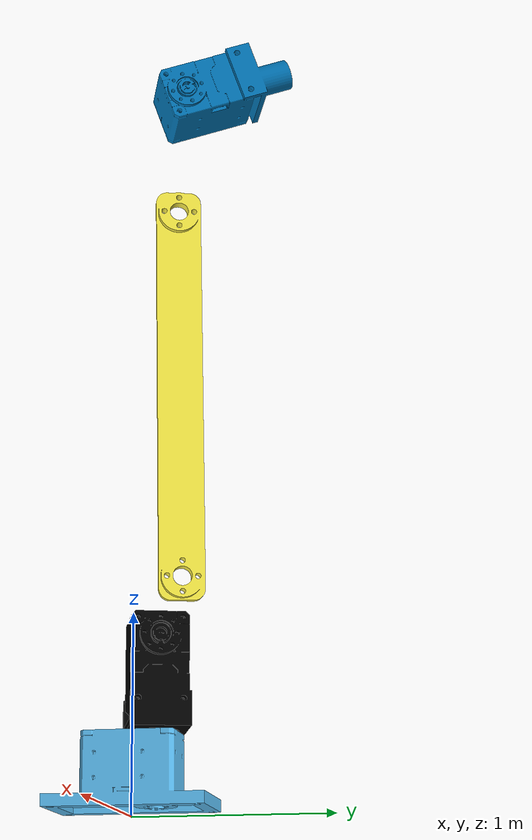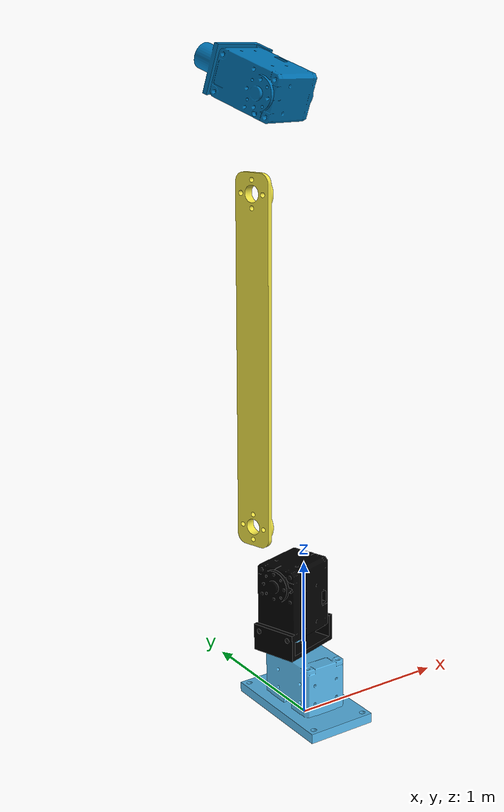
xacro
<?xml version="1.0"?>
<robot name="prarob_manipulator" xmlns:xacro="http://ros.org/wiki/xacro">
  <xacro:include filename="$(find PraRobSem6)/urdf/prarob_manipulator.xacro" />
  <xacro:include filename="$(find PraRobSem6)/urdf/prarob_manipulator.ros2_control.xacro" />

  <link name="world"/>

  <xacro:prarob_manipulator parent="world">
    <origin xyz="0 0 0" rpy="0 0 0" />
  </xacro:prarob_manipulator>

  <xacro:prarob_manipulator_ros2_control name="prarob_manipulator_ros2_control" />
</robot>

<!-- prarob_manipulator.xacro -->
<robot xmlns:xacro="http://ros.org/wiki/xacro">

<xacro:macro name="prarob_manipulator" params="parent *origin">
  <joint name="origin_to_link1" type="fixed">
    <xacro:insert_block name="origin" />
    <parent link="${parent}" />
    <child link="link1" />
    <origin xyz="0.0 0.0 0.0" rpy="0 0 0"/>
    <axis xyz="0 0 1" />
  </joint>

<!-- Link 1 - stl -->
  <link name="link1">
    <visual>
      <origin rpy="0 0 0" xyz="0 0 0.0435"/>
      <geometry>
        <mesh filename="package://PraRobSem6/meshes/postolje_i_baza.stl" scale="0.01 0.01 0.01"/>
      </geometry>
    </visual>
    <collision>
      <origin rpy="0 0 0" xyz="0 0 0"/>
      <geometry>
        <mesh filename="package://PraRobSem6/meshes/postolje_i_baza.stl" scale="0.01 0.01 0.01"/>
      </geometry>
    </collision>

  </link>

  <!-- Joint 1 -->
  <joint name="joint1" type="revolute">
    <parent link="link1"/>
    <child link="link2"/>
    <origin xyz="0 0.147 0.36" rpy="0 0 0"/>
    <axis xyz="0 0 1"/>
    <limit velocity="10.0" effort="1" lower="-2.82743338823" upper="2.82743338823" />
  </joint>

  <!-- Link 2 -->
  <link name="link2">
    <visual>
      <origin xyz="0 -0.147 -0.36" rpy="0 0 0"/>
      <geometry>
        <mesh filename="package://PraRobSem6/meshes/prvi_zglob.stl" scale="0.01 0.01 0.01"/>
      </geometry>
      <material name="">
        <color rgba="0 0 0 1.0"/>
      </material>
    </visual>

    <collision>
      <origin xyz="0 -0.147 -0.36" rpy="0 0 0"/>
      <geometry>
        <mesh filename="package://PraRobSem6/meshes/prvi_zglob.stl" scale="0.01 0.01 0.01"/>
      </geometry>
    </collision>
  </link>

  <!-- Joint 2 -->
  <joint name="joint2" type="revolute">
    <parent link="link2"/>
    <child link="link3"/>
    <origin xyz="0 0 0.55" rpy="0 0 0"/>
    <axis xyz="0 0 1"/>
    <limit velocity="10.0" effort="1" lower="-2.82743338823" upper="2.82743338823" />
  </joint>

  <!-- Link 3 -->
  <link name="link3">
    <visual>
      <origin xyz="0 0 -0.55" rpy="0 0 0"/>
      <geometry>
        <mesh filename="package://PraRobSem6/meshes/drugi_zglob.stl" scale="0.01 0.01 0.01"/>
      </geometry>
      <color rgba="0 0 0"/>
    </visual>

    <collision>
      <origin xyz="0 0 -0.55" rpy="0 0 0"/>
      <geometry>
        <mesh filename="package://PraRobSem6/meshes/drugi_zglob.stl" scale="0.01 0.01 0.01"/>
      </geometry>
    </collision>
  </link>

  <!-- Joint 3 -->
  <joint name="joint3" type="revolute">
    <parent link="link3"/>
    <child link="link_tool"/>
    <origin xyz="0 1.78 0" rpy="0 0 0"/>
    <axis xyz="0 0 1"/>
    <limit velocity="10.0" effort="1" lower="-2.82743338823" upper="2.82743338823" />
  </joint>

  <!-- link_tool -->
  <link name="link_tool">
    <visual>
      <origin xyz="0 -1.78 0" rpy="0 0 0"/>
      <geometry>
        <mesh filename="package://PraRobSem6/meshes/treci_zglob.stl" scale="0.01 0.01 0.01"/>
      </geometry>
      <color rgba="255 104 255 1"/>
    </visual>

    <collision>
      <origin xyz="0 -1.78 0" rpy="0 0 0"/>
      <geometry>
        <mesh filename="package://PraRobSem6/meshes/treci_zglob.stl" scale="0.01 0.01 0.01"/>
      </geometry>
    </collision>
  </link>

</xacro:macro>
</robot>
